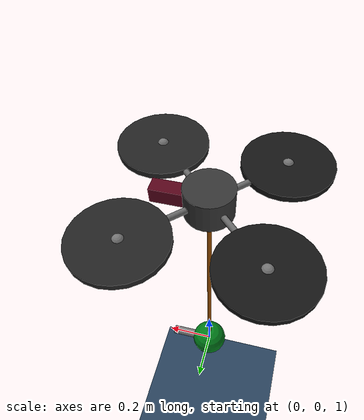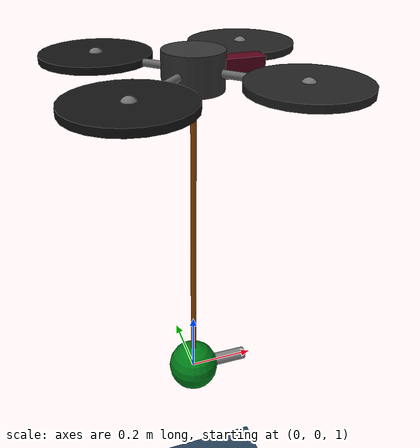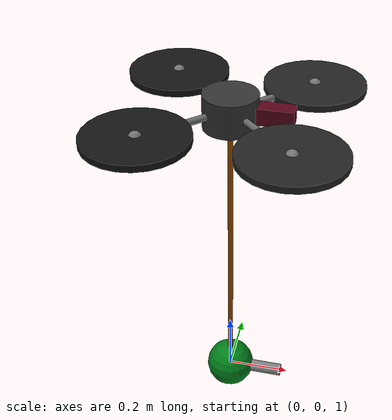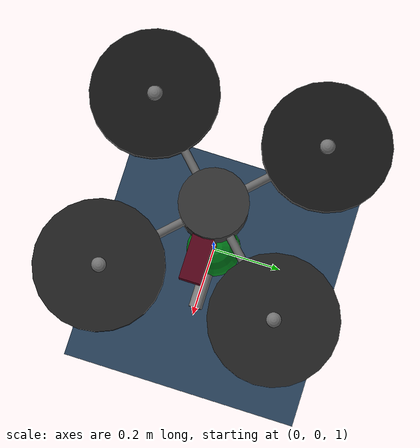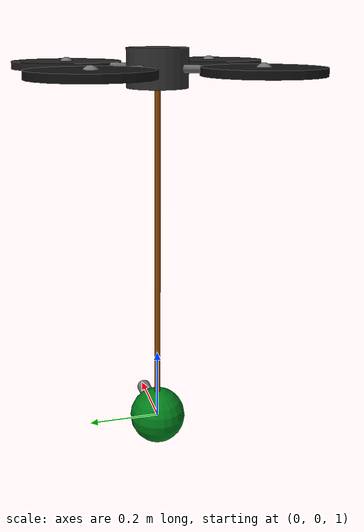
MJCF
<!--By Valerii Lisnychuk, Valerii.Lisnychuk@fs.cvut.cz-->
<!--Diploma thesis, summer 2025, CTU FME-->

<!--Symmetrical model, X shape, no environmental resistance-->
<mujoco model="Model quadcopter_v2">
	<statistic meansize="0.15"/>
	<!-- integrator="RK4" density="1.205" viscosity="1.8e-5" density[kg/m3] viscosity[kg/(ms)]-->
	<option timestep ="0.005" density="0" viscosity="0" magnetic="27 0 0"/>

	<visual>
		<headlight diffuse="0.7 0.7 0.7" ambient="0.7 0.7 0.7" specular="1.5 1.5 1.5"/>
		<rgba haze="0.1 0.2 0.3 1"/>
		<global azimuth="100" elevation="-30" ellipsoidinertia="true" offwidth="1280" offheight="720"/>
		<map zfar="500"/>
  	</visual>

	<asset>
		<!--Scene-->
		<!--sky-->
		<texture type="skybox" builtin="gradient" rgb1="0.3 0.5 0.7" rgb2="0 0 0" width="512" height="512"/>
		<!--floor-->
		<texture type="2d" name="podlaha_textura" builtin="checker" mark="edge" rgb1="0.2 0.3 0.4" rgb2="0.1 0.2 0.3"
				 markrgb="0.8 0.8 0.8" width="255" height="255"/>
		<material name="floor" texture="podlaha_textura" texuniform="true" texrepeat="3 3" reflectance="0"/>

		<!--Dark carbon coating-->
        <texture type="2d" name="carbon_texture_dark" builtin="checker" mark="cross"
				 rgb1="0.03 0.03 0.03" rgb2="0.12 0.12 0.12" markrgb="0.18 0.18 0.18" width="1024" height="1024"/>
		<material name="carbon_dark" texture="carbon_texture_dark" texuniform="true" texrepeat="50 50"
				  reflectance="0.3" shininess="0.8" specular="0.5"/>

        <!--Light carbon coating-->
		<texture type="2d" name="carbon_texture_light" builtin="checker" mark="cross"
				 rgb1="0.08 0.08 0.08" rgb2="0.18 0.18 0.18" markrgb="0.25 0.25 0.25" width="1024" height="1024"/>
        <material name="carbon_light" texture="carbon_texture_light" texuniform="true" texrepeat="50 50"
				  reflectance="0.35" shininess="0.85" specular="0.6"/>
	</asset>

	<worldbody><!--SI units-->
		<!--light and floor-->
        <light diffuse="0.7 0.7 0.7" pos="0 0 30" dir="0 0 -1" directional="false"/>
		<geom name="floor" type="plane" size="0 0 0.1" material="floor"/>

		<!--Quadcopter-->
		<body name="quadcopter" pos="0 0 2">
			<joint type="free"/>
			<geom type="cylinder" name="zakladna" size="0.08 0.05" mass="0.8" rgba="0.2 0.2 0.2 1"/>
			<geom type="box" name="pred" size="0.1 0.025 0.025" mass="0" pos="0.08 0 0" rgba="0.3373 0.0118 0.0980 1"/>

			<!--IMU=Inertial measurement unit-->
			<!--location of all sensors-->
			<site name="IMU+other" euler="180 0 0" type="capsule" size="0.04" rgba="1 1 0 1"/>

			<body euler="-90 45 0"> <!-- rotor1 - rotor3 Arm-->
				<geom type="cylinder" size="0.01 0.29" mass="0.55" rgba="0.41 0.41 0.41 1"/>

				<geom type="cylinder" name="rotor1" pos="0 0 0.29" euler="90 0 0" size="0.15 0.01"
					  mass="0.025" material="carbon_light"/>
				<!--rotor1 position -->
				<site name="thrust1" pos="0 0 0.29" euler="90 0 0" size="0.02" rgba="0.45 0.45 0.45 1"/>

				<geom type="cylinder" name="rotor3" pos="0 0 -0.29" euler="90 0 0" size="0.15 0.01"
					  mass="0.025" material="carbon_dark"/>
				<!--rotor3 position -->
				<site name="thrust3" pos="0 0 -0.29" euler="90 0 0" size="0.02" rgba="0.45 0.45 0.45 1"/>
			</body>

			<body euler="-90 -45 0"> <!--rotor2 - rotor4 Arm-->
				<geom type="cylinder" size="0.01 0.29" mass="0.55" rgba="0.41 0.41 0.41 1"/>

				<geom type="cylinder" name="rotor2" pos="0 0 -0.29" euler="90 0 0" size="0.15 0.01"
					  mass="0.025" material="carbon_light"/>
				<!--rotor 2 position-->
				<site name="thrust2" pos="0 0 -0.29" euler="90 0 0" size="0.02" rgba="0.45 0.45 0.45 1"/>

				<geom type="cylinder" name="rotor4" pos="0 0 0.29" euler="90 0 0" size="0.15 0.01"
					  mass="0.025" material="carbon_dark"/>
				<!--rotor 4 position-->
				<site name="thrust4" pos="0 0 0.29" euler="90 0 0" size="0.02" rgba="0.45 0.45 0.45 1"/>
			</body>

			<!--Suspended Load-->
			<body name="pendulum" pos="0 0 0" euler="0 0 0">
				<joint type="ball" name="spojeni_lano"/>

				<geom type="cylinder" name="lano" pos="0 0 -0.5" size="0.008 0.5"
					  mass="0" rgba="0.58 0.29 0 1" contype="0" conaffinity="0"/>

				<!--Fictitious visual shell-->
				<geom name="load" type="sphere" size="0.08" pos="0 0 -1"
					  mass="0" rgba="0 0.5 0.1 1" contype="0" conaffinity="0"/>
				<!--True point mass-->
				<geom name="point_mass" type="sphere" size="0.001" pos="0 0 -1"
					  mass="1" rgba="0 0.5 0.1 1" contype="0" conaffinity="0"/>
				<!--Visual identification of the front part of the load-->
				<geom name="ref" type="cylinder" size="0.02 0.1" pos="0.08 0 -1" euler="0 90 0"
					  mass="0" contype="0" conaffinity="0"/>

			</body>
		</body>
	</worldbody>

	<!--Sensor definition-->
	<sensor>
		<!--Read data from mjData.sensordata -> custom function sensor_data_by_name()-->
		<accelerometer name="akcelerometr" site="IMU+other"/> <!--3 outputs-->
		<velocimeter name="mereni rychlosti" site="IMU+other"/> <!--3 outputs-->
		<gyro name="gyroskop" site="IMU+other"/> <!--3 outputs-->
		<magnetometer name="magnetometr" site="IMU+other"/>
	</sensor>

	<!--Configuration motors on rotors-->
	<actuator>
		<motor name="motor1" site="thrust1" gear="0 0 0.0000093 0 0 0.00000036" /> <!--CCW-->
		<motor name="motor2" site="thrust2" gear="0 0 0.0000093 0 0 -0.00000036" /> <!--CW-->
		<motor name="motor3" site="thrust3" gear="0 0 0.0000093 0 0 0.00000036" /> <!--CCW-->
		<motor name="motor4" site="thrust4" gear="0 0 0.0000093 0 0 -0.00000036" /> <!--CW-->
	</actuator>
</mujoco>
